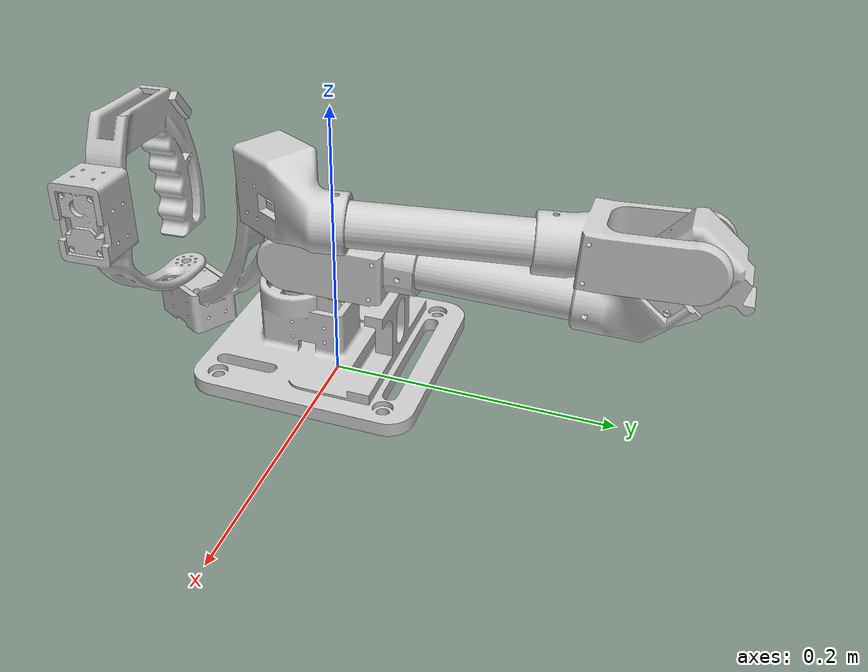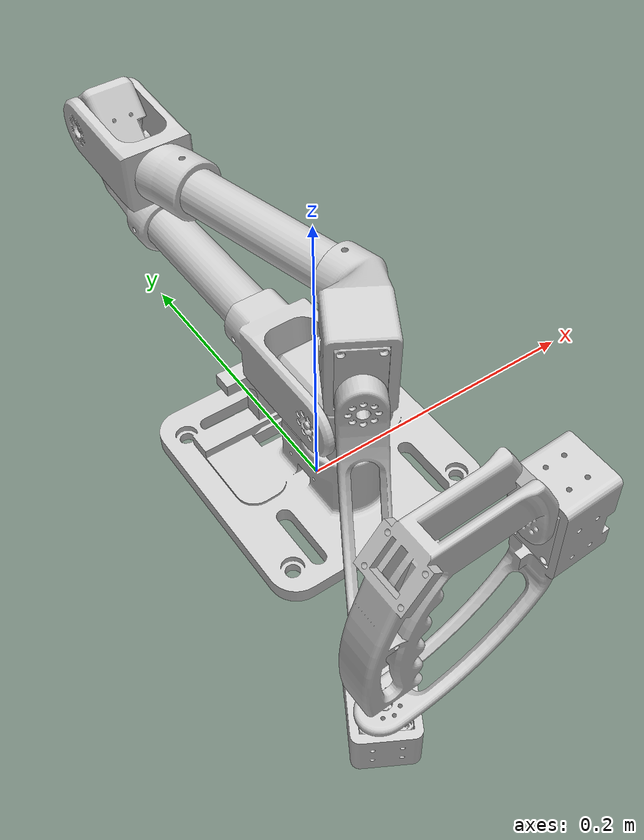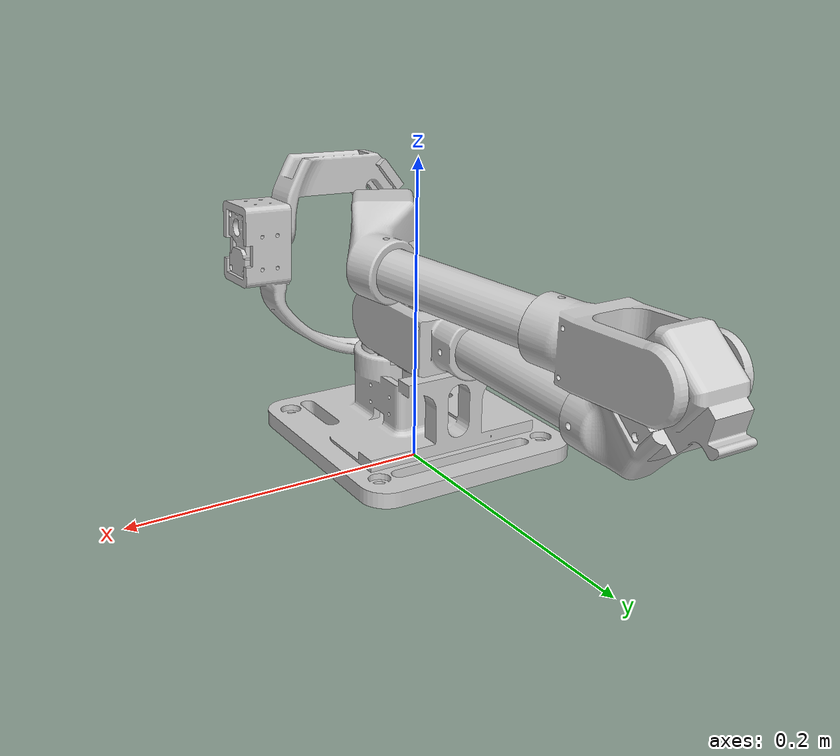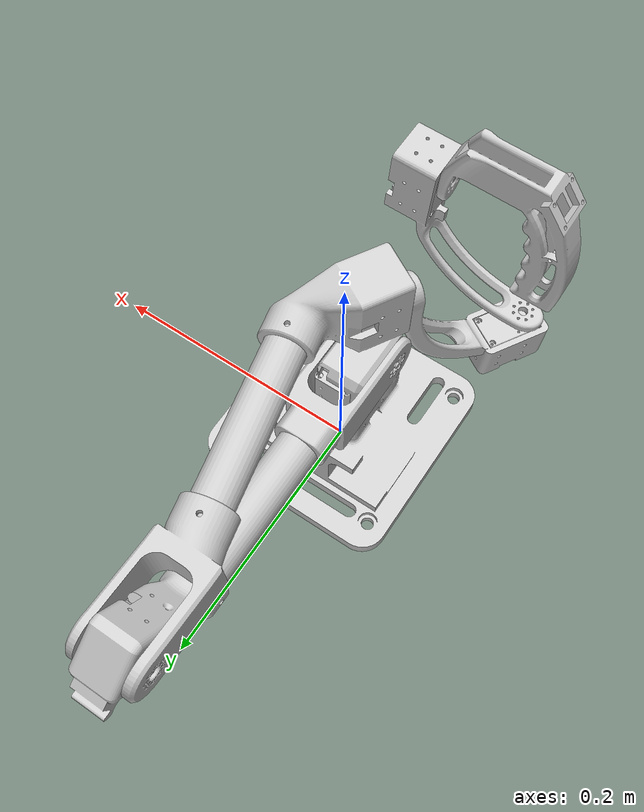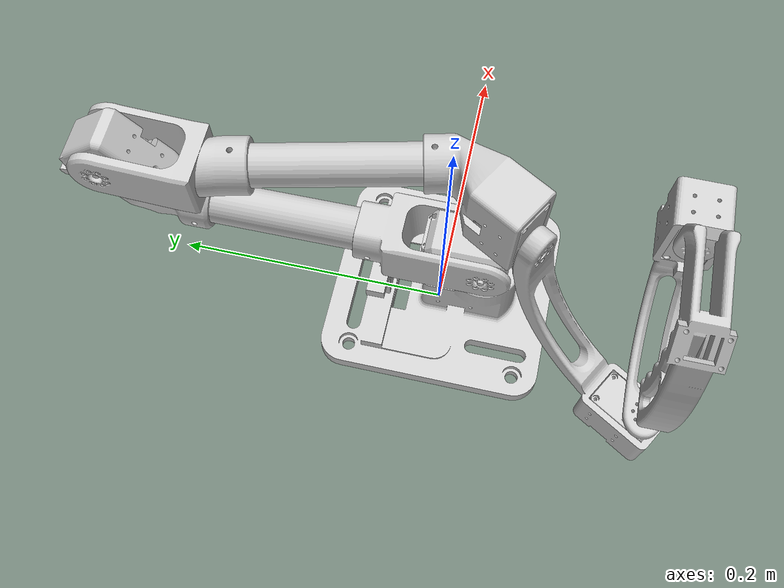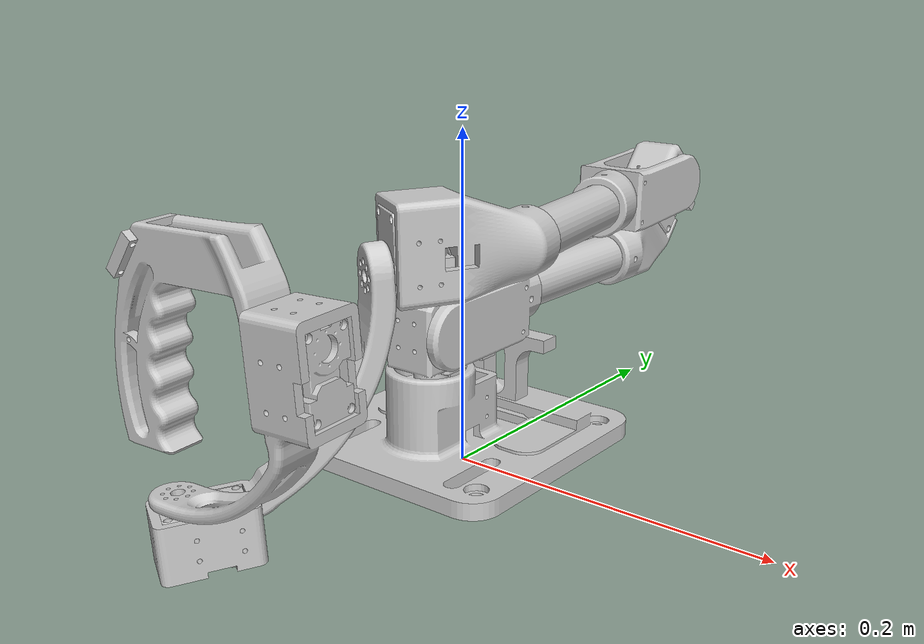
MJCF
<mujoco model="Leader_Left_URDF">
    <compiler angle="radian" coordinate="local"/>
    <option gravity="0 0 -9.81"/>

    <asset>
        <mesh name="base_link" file="meshes/base_link.stl" scale="0.001 0.001 0.001"/>
        <mesh name="m4_1" file="meshes/m4_1.stl" scale="0.001 0.001 0.001"/>
        <mesh name="link_1_1" file="meshes/link_1_1.stl" scale="0.001 0.001 0.001"/>
        <mesh name="m2_1" file="meshes/m2_1.stl" scale="0.001 0.001 0.001"/>
        <mesh name="link_2_1_1" file="meshes/link_2_1_1.stl" scale="0.001 0.001 0.001"/>
        <mesh name="link_2_2_1" file="meshes/link_2_2_1.stl" scale="0.001 0.001 0.001"/>
        <mesh name="link_2_3_1" file="meshes/link_2_3_1.stl" scale="0.001 0.001 0.001"/>
        <mesh name="m3_1" file="meshes/m3_1.stl" scale="0.001 0.001 0.001"/>
        <mesh name="link_3_1_1" file="meshes/link_3_1_1.stl" scale="0.001 0.001 0.001"/>
        <mesh name="link_3_2_1" file="meshes/link_3_2_1.stl" scale="0.001 0.001 0.001"/>
        <mesh name="link_3_3_1" file="meshes/link_3_3_1.stl" scale="0.001 0.001 0.001"/>
        <mesh name="link_4_1" file="meshes/link_4_1.stl" scale="0.001 0.001 0.001"/>
        <mesh name="m5_1" file="meshes/m5_1.stl" scale="0.001 0.001 0.001"/>
        <mesh name="link_5_1" file="meshes/link_5_1.stl" scale="0.001 0.001 0.001"/>
        <mesh name="m6_1" file="meshes/m6_1.stl" scale="0.001 0.001 0.001"/>
        <mesh name="m1_1" file="meshes/m1_1.stl" scale="0.001 0.001 0.001"/>
        <mesh name="handle_1" file="meshes/handle_1.stl" scale="0.001 0.001 0.001"/>
        <mesh name="end_eff_1" file="meshes/end_eff_1.stl" scale="0.001 0.001 0.001"/>
    </asset>

    <contact>
      <exclude body1="base_link" body2="m1_1"/>
      <exclude body1="m1_1" body2="link_1_1"/>
      <exclude body1="link_1_1" body2="m2_1"/>
      <exclude body1="m2_1" body2="link_2_1_1"/>
      <exclude body1="link_2_1_1" body2="link_2_2_1"/>
      <exclude body1="link_2_2_1" body2="link_2_3_1"/>
      <exclude body1="link_2_3_1" body2="m3_1"/>
      <exclude body1="m3_1" body2="link_3_1_1"/>
      <exclude body1="link_3_1_1" body2="link_3_2_1"/>
      <exclude body1="link_3_2_1" body2="link_3_3_1"/>
      <exclude body1="link_3_3_1" body2="m4_1"/>
      <exclude body1="m4_1" body2="link_4_1"/>
      <exclude body1="link_4_1" body2="m5_1"/>
      <exclude body1="m5_1" body2="link_5_1"/>
      <exclude body1="link_5_1" body2="m6_1"/>
      <exclude body1="m6_1" body2="handle_1"/>
      <exclude body1="handle_1" body2="end_eff_1"/>
    </contact>

    <worldbody>
        <body name="base_link" pos="-0.0003253601516050781 -0.002209634323665521 0.012262432526596674">
            <inertial mass="0.12313372672213609"
                diaginertia="0.000245 0.000215 0.00041"
                pos="-0.0003253601516050781 -0.002209634323665521 0.012262432526596674"/>
            <geom type="mesh" mesh="base_link" rgba="0.8 0.8 0.8 1"/>

            <body name="m1_1" pos="0.00012 0.008312 0.044">
                <inertial mass="0.0648703767733563"
                    diaginertia="1.8e-05 1e-05 1.6e-05"
                    pos="-3.57592792082982e-07 -0.023360980651256563 -0.016024080722972497"/>
                <geom type="mesh" mesh="m1_1" pos="0 0 0" rgba="0.8 0.8 0.8 1"/>

                <body name="link_1_1" pos="0.0 -0.03525 0.002">
                    <joint name="joint_1" type="hinge" axis="0 0 -1" limited="true" range="-1.57 1.57"/>
                    <inertial mass="0.014450766794221574"
                        diaginertia="9e-06 5e-06 7e-06"
                        pos="-0.003859633472288952 0.011581601138550784 0.027712968758423856"/>
                    <geom type="mesh" mesh="link_1_1" pos="-0.00012 0.026938 -0.046" rgba="0.8 0.8 0.8 1"/>

                    <body name="m2_1" pos="-0.020245 0.03555 0.031787">
                        <inertial mass="0.06591293785346757"
                            diaginertia="1.6e-05 1e-05 1.8e-05"
                            pos="0.016029919264996296 -0.02381355822066314 3.132003280378881e-06"/>
                        <geom type="mesh" mesh="m2_1" pos="0.020125 -0.008612 -0.077787" rgba="0.8 0.8 0.8 1"/>

                        <body name="link_2_1_1" pos="-0.002 -0.0357 0.0">
                            <joint name="joint_2" type="hinge" axis="1 0 0" limited="true" range="0 3.14159"/>
                            <inertial mass="0.030872070333945626"
                                diaginertia="2.8e-05 1.3e-05 3.3e-05"
                                pos="0.020447936178208028 0.04356852853343031 3.98563522915063e-05"/>
                            <geom type="mesh" mesh="link_2_1_1" pos="0.022125 0.027088 -0.077787" rgba="0.8 0.8 0.8 1"/>

                            <body name="link_2_2_1" pos="0.017443 0.069292 0.003547">
                                <inertial mass="0.005825311058581139"
                                    diaginertia="1e-05 1e-06 1e-05"
                                    pos="1.4871344219350574e-07 0.07134822190673207 -0.0008403166474869883"/>
                                <geom type="mesh" mesh="link_2_2_1" pos="0.004682 -0.042204 -0.081334" rgba="0.8 0.8 0.8 1"/>

                                <body name="link_2_3_1" pos="0.0 0.14269 -0.001687">
                                    <inertial mass="0.04204951504353263"
                                        diaginertia="5e-05 2.6e-05 3.2e-05"
                                        pos="0.0009583722266905074 0.03019048620616896 0.019249586324115414"/>
                                    <geom type="mesh" mesh="link_2_3_1" pos="0.004682 -0.184894 -0.079647" rgba="0.8 0.8 0.8 1"/>

                                    <body name="m3_1" pos="-0.015435 0.056581 0.052838">
                                        <inertial mass="0.06487040048295688"
                                            diaginertia="1.6e-05 1.5e-05 1.3e-05"
                                            pos="0.016023979387790863 -0.014873648395802963 -0.017725618759735662"/>
                                        <geom type="mesh" mesh="m3_1" pos="0.020117 -0.241475 -0.132485" rgba="0.8 0.8 0.8 1"/>

                                        <body name="link_3_1_1" pos="-0.002 -0.007232 -0.008618">
                                            <joint name="joint_3" type="hinge" axis="1 0 0" limited="true" range="-3 0"/>
                                            <inertial mass="0.03586844233337818"
                                                diaginertia="3.7e-05 1.6e-05 4.3e-05"
                                                pos="0.01925925927573646 -0.045107892588143156 -0.002377283608511166"/>
                                            <geom type="mesh" mesh="link_3_1_1" pos="0.022117 -0.234243 -0.123867" rgba="0.8 0.8 0.8 1"/>

                                            <body name="link_3_2_1" pos="0.022115 -0.067701 -0.004245">
                                                <inertial mass="0.006739778800763683"
                                                    diaginertia="1.5e-05 2e-06 1.6e-05"
                                                    pos="0.01709491669568042 -0.08062793095437652 0.0028161161569842247"/>
                                                <geom type="mesh" mesh="link_3_2_1" pos="2e-06 -0.166542 -0.119622" rgba="0.8 0.8 0.8 1"/>

                                                <body name="link_3_3_1" pos="0.034139 -0.161025 0.005624">
                                                    <inertial mass="0.042677067587543305"
                                                        diaginertia="2.8e-05 2.3e-05 2.8e-05"
                                                        pos="-0.017356364011167604 -0.022922285362048937 0.002352073278808431"/>
                                                    <geom type="mesh" mesh="link_3_3_1" pos="-0.034137 -0.005517 -0.125246" rgba="0.8 0.8 0.8 1"/>

                                                    <body name="m4_1" pos="-0.042017 -0.057766 -0.021401">
                                                        <inertial mass="0.06486746136281475"
                                                            diaginertia="1.7e-05 1.6e-05 1e-05"
                                                            pos="0.007808539383890615 0.013115142769053283 0.023647171533404635"/>
                                                        <geom type="mesh" mesh="m4_1" pos="0.00788 0.052249 -0.103845" rgba="0.8 0.8 0.8 1"/>

                                                        <body name="link_4_1" pos="-0.001099 -0.002097 0.011179">
                                                            <joint name="joint_4" type="hinge" axis="-0.499924 -0.865456 -0.03259" limited="true" range="-1.57 1.57"/>
                                                            <inertial mass="0.0292050875698917"
                                                                diaginertia="0.000127 9.7e-05 6.5e-05"
                                                                pos="-0.02800253299299177 -0.05104673961604362 -0.08619418085078577"/>
                                                            <geom type="mesh" mesh="link_4_1" pos="0.008979 0.054346 -0.115024" rgba="0.8 0.8 0.8 1"/>

                                                            <body name="m5_1" pos="-0.062522 -0.112633 -0.118132">
                                                                <inertial mass="0.06486746136281475"
                                                                    diaginertia="1.6e-05 1.2e-05 1.6e-05"
                                                                    pos="0.012233840528486521 0.020545879919487725 -0.014844292536889857"/>
                                                                <geom type="mesh" mesh="m5_1" pos="0.071501 0.166979 0.003108" rgba="0.8 0.8 0.8 1"/>

                                                                <body name="link_5_1" pos="0.005532 0.009665 0.00256">
                                                                    <joint name="joint_5" type="hinge" axis="-0.042543 -0.033192 0.998543" limited="true" range="-3.14 0.75"/>
                                                                    <inertial mass="0.02305323751736646"
                                                                        diaginertia="4.4e-05 6.9e-05 3.2e-05"
                                                                        pos="0.08245862826802652 -0.0011536472071111414 0.07308799784188207"/>
                                                                    <geom type="mesh" mesh="link_5_1" pos="0.065969 0.157314 0.000548" rgba="0.8 0.8 0.8 1"/>

                                                                    <body name="m6_1" pos="0.084215 -0.002619 0.124245">
                                                                        <inertial mass="0.06486743765321443"
                                                                            diaginertia="1.6e-05 1.8e-05 1e-05"
                                                                            pos="0.0169917091601997 0.001034064158483644 -0.02241316613951931"/>
                                                                        <geom type="mesh" mesh="m6_1" pos="-0.018246 0.159933 -0.123697" rgba="0.8 0.8 0.8 1"/>

                                                                        <body name="handle_1" pos="-0.00152 0.00034 -0.01132">
                                                                            <joint name="joint_6" type="hinge" axis="0.998933 0.016589 0.043111" limited="true" range="-1.57 1.57"/>
                                                                            <inertial mass="0.03628934810015539"
                                                                                diaginertia="4.9e-05 8.6e-05 4.1e-05"
                                                                                pos="-0.0656463838589671 -0.00112319824712509 -0.0051623713782722735"/>
                                                                            <geom type="mesh" mesh="handle_1" pos="-0.016726 0.159593 -0.112377" rgba="0.8 0.8 0.8 1"/>

                                                                            <body name="end_eff_1" pos="-0.091535 0.004664 -0.016636">
                                                                                <inertial mass="3.8170324770890806e-05"
                                                                                    diaginertia="0.0 0.0 0.0"
                                                                                    pos="0.00010678576023913366 -0.005996475090327302 -0.00016923054931050618"/>
                                                                                <geom type="mesh" mesh="end_eff_1" pos="0.074809 0.154929 -0.095741" rgba="0.8 0.8 0.8 1"/>
                                                                            </body>
                                                                        </body>
                                                                    </body>
                                                                </body>
                                                            </body>
                                                        </body>
                                                    </body>
                                                </body>
                                            </body>
                                        </body>
                                    </body>
                                </body>
                            </body>
                        </body>
                    </body>
                </body>
            </body>
        </body>
    </worldbody>

    <actuator>
        <motor joint="joint_1" ctrlrange="-1.57 1.57" gear="1" forcerange="-100 100"/>
        <motor joint="joint_2" ctrlrange="0 3.14159" gear="1" forcerange="-100 100"/>
        <motor joint="joint_3" ctrlrange="-3 0" gear="1" forcerange="-100 100"/>
        <motor joint="joint_4" ctrlrange="-1.57 1.57" gear="1" forcerange="-100 100"/>
        <motor joint="joint_5" ctrlrange="-3.14 0.75" gear="1" forcerange="-100 100"/>
        <motor joint="joint_6" ctrlrange="-1.57 1.57" gear="1" forcerange="-100 100"/>
    </actuator>
</mujoco>
